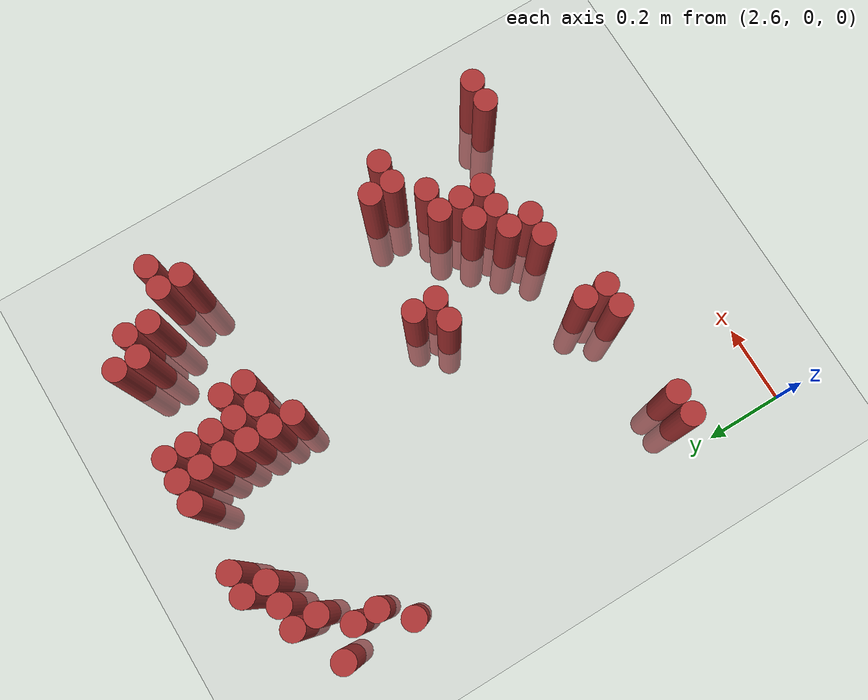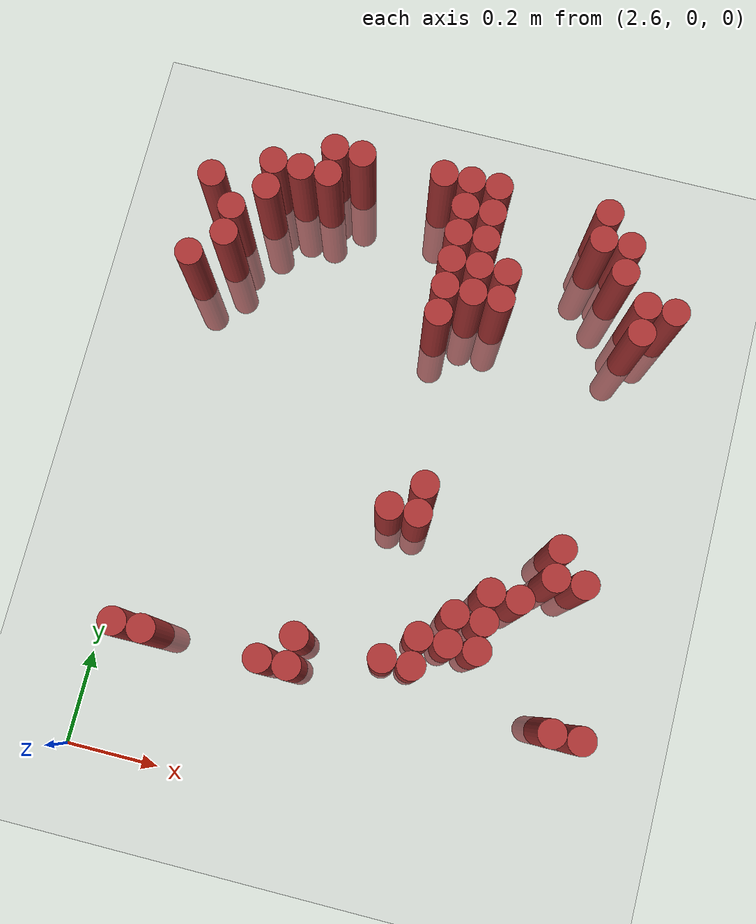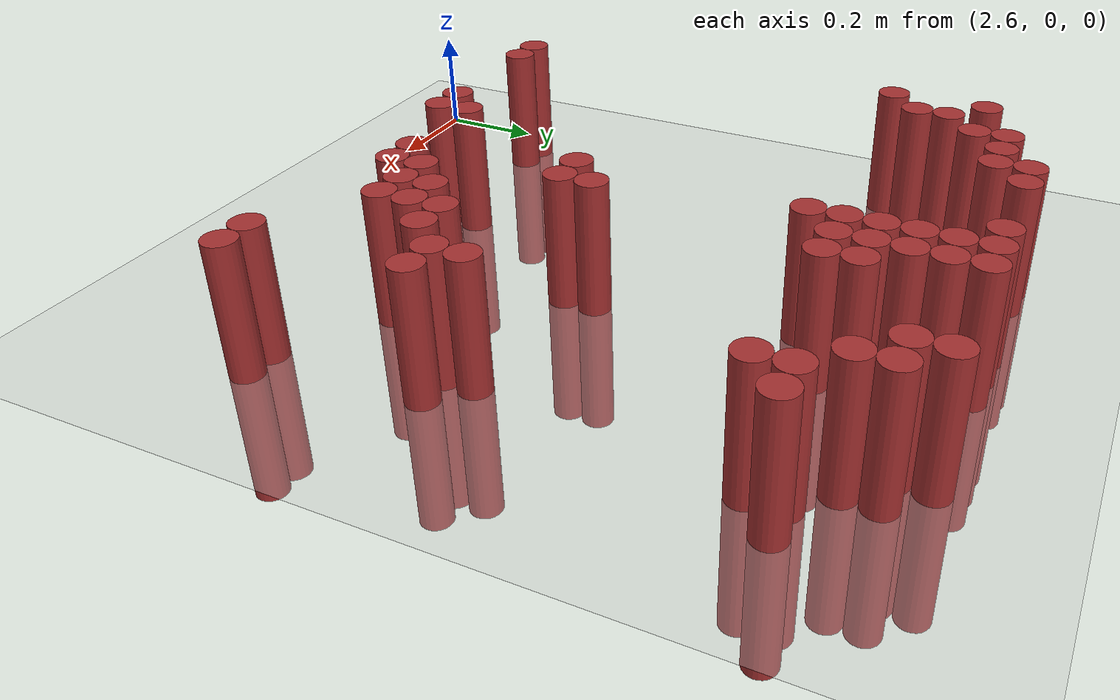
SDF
<sdf version="1.6">
 <world name="default">
  <model name="ground_plane">
   <static>1</static>
   <link name="link">
    <collision name="collision">
     <geometry><plane><normal>0 0 1</normal><size>100 100</size></plane></geometry>
     <surface><friction><ode><mu>100</mu><mu2>50</mu2></ode></friction></surface>
    </collision>
    <visual name="visual">
     <cast_shadows>0</cast_shadows>
     <geometry><plane><normal>0 0 1</normal><size>100 100</size></plane></geometry>
     <material>
      <script><uri>file://media/materials/scripts/gazebo.material</uri><name>Gazebo/Grey</name></script>
     </material>
    </visual>
   </link>
  </model>
  <model name="unit_cylinder_171">
   <static>1</static>
   <pose>2.850000 1.350000 0.000000 0.000000 0.000000 0.000000</pose>
   <link name="link">
    <inertial>
     <mass>1</mass>
     <inertia><ixx>0.145833</ixx><ixy>0</ixy><ixz>0</ixz><iyy>0.145833</iyy><iyz>0</iyz><izz>0.125</izz></inertia>
    </inertial>
    <collision name="collision">
     <geometry><cylinder><radius>0.030000</radius><length>0.5</length></cylinder></geometry>
    </collision>
    <visual name="visual">
     <geometry><cylinder><radius>0.030000</radius><length>0.5</length></cylinder></geometry>
     <material>
      <ambient>0.648000 0.192000 0.192000 1</ambient>
      <diffuse>0.648000 0.192000 0.192000 1</diffuse>
     </material>
     <material>
      <script><name>Gazebo/Grey</name><uri>file://media/materials/scripts/gazebo.material</uri></script>
     </material>
    </visual>
   </link>
  </model>
  <model name="unit_cylinder_172">
   <static>1</static>
   <pose>2.910000 1.350000 0.000000 0.000000 0.000000 0.000000</pose>
   <link name="link">
    <inertial>
     <mass>1</mass>
     <inertia><ixx>0.145833</ixx><ixy>0</ixy><ixz>0</ixz><iyy>0.145833</iyy><iyz>0</iyz><izz>0.125</izz></inertia>
    </inertial>
    <collision name="collision">
     <geometry><cylinder><radius>0.030000</radius><length>0.5</length></cylinder></geometry>
    </collision>
    <visual name="visual">
     <geometry><cylinder><radius>0.030000</radius><length>0.5</length></cylinder></geometry>
     <material>
      <ambient>0.648000 0.192000 0.192000 1</ambient>
      <diffuse>0.648000 0.192000 0.192000 1</diffuse>
     </material>
     <material>
      <script><name>Gazebo/Grey</name><uri>file://media/materials/scripts/gazebo.material</uri></script>
     </material>
    </visual>
   </link>
  </model>
  <model name="unit_cylinder_173">
   <static>1</static>
   <pose>3.090000 1.350000 0.000000 0.000000 0.000000 0.000000</pose>
   <link name="link">
    <inertial>
     <mass>1</mass>
     <inertia><ixx>0.145833</ixx><ixy>0</ixy><ixz>0</ixz><iyy>0.145833</iyy><iyz>0</iyz><izz>0.125</izz></inertia>
    </inertial>
    <collision name="collision">
     <geometry><cylinder><radius>0.030000</radius><length>0.5</length></cylinder></geometry>
    </collision>
    <visual name="visual">
     <geometry><cylinder><radius>0.030000</radius><length>0.5</length></cylinder></geometry>
     <material>
      <ambient>0.648000 0.192000 0.192000 1</ambient>
      <diffuse>0.648000 0.192000 0.192000 1</diffuse>
     </material>
     <material>
      <script><name>Gazebo/Grey</name><uri>file://media/materials/scripts/gazebo.material</uri></script>
     </material>
    </visual>
   </link>
  </model>
  <model name="unit_cylinder_174">
   <static>1</static>
   <pose>3.150000 1.350000 0.000000 0.000000 0.000000 0.000000</pose>
   <link name="link">
    <inertial>
     <mass>1</mass>
     <inertia><ixx>0.145833</ixx><ixy>0</ixy><ixz>0</ixz><iyy>0.145833</iyy><iyz>0</iyz><izz>0.125</izz></inertia>
    </inertial>
    <collision name="collision">
     <geometry><cylinder><radius>0.030000</radius><length>0.5</length></cylinder></geometry>
    </collision>
    <visual name="visual">
     <geometry><cylinder><radius>0.030000</radius><length>0.5</length></cylinder></geometry>
     <material>
      <ambient>0.648000 0.192000 0.192000 1</ambient>
      <diffuse>0.648000 0.192000 0.192000 1</diffuse>
     </material>
     <material>
      <script><name>Gazebo/Grey</name><uri>file://media/materials/scripts/gazebo.material</uri></script>
     </material>
    </visual>
   </link>
  </model>
  <model name="unit_cylinder_175">
   <static>1</static>
   <pose>3.210000 1.350000 0.000000 0.000000 0.000000 0.000000</pose>
   <link name="link">
    <inertial>
     <mass>1</mass>
     <inertia><ixx>0.145833</ixx><ixy>0</ixy><ixz>0</ixz><iyy>0.145833</iyy><iyz>0</iyz><izz>0.125</izz></inertia>
    </inertial>
    <collision name="collision">
     <geometry><cylinder><radius>0.030000</radius><length>0.5</length></cylinder></geometry>
    </collision>
    <visual name="visual">
     <geometry><cylinder><radius>0.030000</radius><length>0.5</length></cylinder></geometry>
     <material>
      <ambient>0.648000 0.192000 0.192000 1</ambient>
      <diffuse>0.648000 0.192000 0.192000 1</diffuse>
     </material>
     <material>
      <script><name>Gazebo/Grey</name><uri>file://media/materials/scripts/gazebo.material</uri></script>
     </material>
    </visual>
   </link>
  </model>
  <model name="unit_cylinder_176">
   <static>1</static>
   <pose>3.450000 1.350000 0.000000 0.000000 0.000000 0.000000</pose>
   <link name="link">
    <inertial>
     <mass>1</mass>
     <inertia><ixx>0.145833</ixx><ixy>0</ixy><ixz>0</ixz><iyy>0.145833</iyy><iyz>0</iyz><izz>0.125</izz></inertia>
    </inertial>
    <collision name="collision">
     <geometry><cylinder><radius>0.030000</radius><length>0.5</length></cylinder></geometry>
    </collision>
    <visual name="visual">
     <geometry><cylinder><radius>0.030000</radius><length>0.5</length></cylinder></geometry>
     <material>
      <ambient>0.648000 0.192000 0.192000 1</ambient>
      <diffuse>0.648000 0.192000 0.192000 1</diffuse>
     </material>
     <material>
      <script><name>Gazebo/Grey</name><uri>file://media/materials/scripts/gazebo.material</uri></script>
     </material>
    </visual>
   </link>
  </model>
  <model name="unit_cylinder_182">
   <static>1</static>
   <pose>2.730000 1.290000 0.000000 0.000000 0.000000 0.000000</pose>
   <link name="link">
    <inertial>
     <mass>1</mass>
     <inertia><ixx>0.145833</ixx><ixy>0</ixy><ixz>0</ixz><iyy>0.145833</iyy><iyz>0</iyz><izz>0.125</izz></inertia>
    </inertial>
    <collision name="collision">
     <geometry><cylinder><radius>0.030000</radius><length>0.5</length></cylinder></geometry>
    </collision>
    <visual name="visual">
     <geometry><cylinder><radius>0.030000</radius><length>0.5</length></cylinder></geometry>
     <material>
      <ambient>0.648000 0.192000 0.192000 1</ambient>
      <diffuse>0.648000 0.192000 0.192000 1</diffuse>
     </material>
     <material>
      <script><name>Gazebo/Grey</name><uri>file://media/materials/scripts/gazebo.material</uri></script>
     </material>
    </visual>
   </link>
  </model>
  <model name="unit_cylinder_183">
   <static>1</static>
   <pose>2.790000 1.290000 0.000000 0.000000 0.000000 0.000000</pose>
   <link name="link">
    <inertial>
     <mass>1</mass>
     <inertia><ixx>0.145833</ixx><ixy>0</ixy><ixz>0</ixz><iyy>0.145833</iyy><iyz>0</iyz><izz>0.125</izz></inertia>
    </inertial>
    <collision name="collision">
     <geometry><cylinder><radius>0.030000</radius><length>0.5</length></cylinder></geometry>
    </collision>
    <visual name="visual">
     <geometry><cylinder><radius>0.030000</radius><length>0.5</length></cylinder></geometry>
     <material>
      <ambient>0.648000 0.192000 0.192000 1</ambient>
      <diffuse>0.648000 0.192000 0.192000 1</diffuse>
     </material>
     <material>
      <script><name>Gazebo/Grey</name><uri>file://media/materials/scripts/gazebo.material</uri></script>
     </material>
    </visual>
   </link>
  </model>
  <model name="unit_cylinder_184">
   <static>1</static>
   <pose>2.850000 1.290000 0.000000 0.000000 0.000000 0.000000</pose>
   <link name="link">
    <inertial>
     <mass>1</mass>
     <inertia><ixx>0.145833</ixx><ixy>0</ixy><ixz>0</ixz><iyy>0.145833</iyy><iyz>0</iyz><izz>0.125</izz></inertia>
    </inertial>
    <collision name="collision">
     <geometry><cylinder><radius>0.030000</radius><length>0.5</length></cylinder></geometry>
    </collision>
    <visual name="visual">
     <geometry><cylinder><radius>0.030000</radius><length>0.5</length></cylinder></geometry>
     <material>
      <ambient>0.648000 0.192000 0.192000 1</ambient>
      <diffuse>0.648000 0.192000 0.192000 1</diffuse>
     </material>
     <material>
      <script><name>Gazebo/Grey</name><uri>file://media/materials/scripts/gazebo.material</uri></script>
     </material>
    </visual>
   </link>
  </model>
  <model name="unit_cylinder_185">
   <static>1</static>
   <pose>3.150000 1.290000 0.000000 0.000000 0.000000 0.000000</pose>
   <link name="link">
    <inertial>
     <mass>1</mass>
     <inertia><ixx>0.145833</ixx><ixy>0</ixy><ixz>0</ixz><iyy>0.145833</iyy><iyz>0</iyz><izz>0.125</izz></inertia>
    </inertial>
    <collision name="collision">
     <geometry><cylinder><radius>0.030000</radius><length>0.5</length></cylinder></geometry>
    </collision>
    <visual name="visual">
     <geometry><cylinder><radius>0.030000</radius><length>0.5</length></cylinder></geometry>
     <material>
      <ambient>0.648000 0.192000 0.192000 1</ambient>
      <diffuse>0.648000 0.192000 0.192000 1</diffuse>
     </material>
     <material>
      <script><name>Gazebo/Grey</name><uri>file://media/materials/scripts/gazebo.material</uri></script>
     </material>
    </visual>
   </link>
  </model>
  <model name="unit_cylinder_186">
   <static>1</static>
   <pose>3.210000 1.290000 0.000000 0.000000 0.000000 0.000000</pose>
   <link name="link">
    <inertial>
     <mass>1</mass>
     <inertia><ixx>0.145833</ixx><ixy>0</ixy><ixz>0</ixz><iyy>0.145833</iyy><iyz>0</iyz><izz>0.125</izz></inertia>
    </inertial>
    <collision name="collision">
     <geometry><cylinder><radius>0.030000</radius><length>0.5</length></cylinder></geometry>
    </collision>
    <visual name="visual">
     <geometry><cylinder><radius>0.030000</radius><length>0.5</length></cylinder></geometry>
     <material>
      <ambient>0.648000 0.192000 0.192000 1</ambient>
      <diffuse>0.648000 0.192000 0.192000 1</diffuse>
     </material>
     <material>
      <script><name>Gazebo/Grey</name><uri>file://media/materials/scripts/gazebo.material</uri></script>
     </material>
    </visual>
   </link>
  </model>
  <model name="unit_cylinder_187">
   <static>1</static>
   <pose>3.450000 1.290000 0.000000 0.000000 0.000000 0.000000</pose>
   <link name="link">
    <inertial>
     <mass>1</mass>
     <inertia><ixx>0.145833</ixx><ixy>0</ixy><ixz>0</ixz><iyy>0.145833</iyy><iyz>0</iyz><izz>0.125</izz></inertia>
    </inertial>
    <collision name="collision">
     <geometry><cylinder><radius>0.030000</radius><length>0.5</length></cylinder></geometry>
    </collision>
    <visual name="visual">
     <geometry><cylinder><radius>0.030000</radius><length>0.5</length></cylinder></geometry>
     <material>
      <ambient>0.648000 0.192000 0.192000 1</ambient>
      <diffuse>0.648000 0.192000 0.192000 1</diffuse>
     </material>
     <material>
      <script><name>Gazebo/Grey</name><uri>file://media/materials/scripts/gazebo.material</uri></script>
     </material>
    </visual>
   </link>
  </model>
  <model name="unit_cylinder_188">
   <static>1</static>
   <pose>3.510000 1.290000 0.000000 0.000000 0.000000 0.000000</pose>
   <link name="link">
    <inertial>
     <mass>1</mass>
     <inertia><ixx>0.145833</ixx><ixy>0</ixy><ixz>0</ixz><iyy>0.145833</iyy><iyz>0</iyz><izz>0.125</izz></inertia>
    </inertial>
    <collision name="collision">
     <geometry><cylinder><radius>0.030000</radius><length>0.5</length></cylinder></geometry>
    </collision>
    <visual name="visual">
     <geometry><cylinder><radius>0.030000</radius><length>0.5</length></cylinder></geometry>
     <material>
      <ambient>0.648000 0.192000 0.192000 1</ambient>
      <diffuse>0.648000 0.192000 0.192000 1</diffuse>
     </material>
     <material>
      <script><name>Gazebo/Grey</name><uri>file://media/materials/scripts/gazebo.material</uri></script>
     </material>
    </visual>
   </link>
  </model>
  <model name="unit_cylinder_193">
   <static>1</static>
   <pose>2.610000 1.230000 0.000000 0.000000 0.000000 0.000000</pose>
   <link name="link">
    <inertial>
     <mass>1</mass>
     <inertia><ixx>0.145833</ixx><ixy>0</ixy><ixz>0</ixz><iyy>0.145833</iyy><iyz>0</iyz><izz>0.125</izz></inertia>
    </inertial>
    <collision name="collision">
     <geometry><cylinder><radius>0.030000</radius><length>0.5</length></cylinder></geometry>
    </collision>
    <visual name="visual">
     <geometry><cylinder><radius>0.030000</radius><length>0.5</length></cylinder></geometry>
     <material>
      <ambient>0.648000 0.192000 0.192000 1</ambient>
      <diffuse>0.648000 0.192000 0.192000 1</diffuse>
     </material>
     <material>
      <script><name>Gazebo/Grey</name><uri>file://media/materials/scripts/gazebo.material</uri></script>
     </material>
    </visual>
   </link>
  </model>
  <model name="unit_cylinder_194">
   <static>1</static>
   <pose>2.730000 1.230000 0.000000 0.000000 0.000000 0.000000</pose>
   <link name="link">
    <inertial>
     <mass>1</mass>
     <inertia><ixx>0.145833</ixx><ixy>0</ixy><ixz>0</ixz><iyy>0.145833</iyy><iyz>0</iyz><izz>0.125</izz></inertia>
    </inertial>
    <collision name="collision">
     <geometry><cylinder><radius>0.030000</radius><length>0.5</length></cylinder></geometry>
    </collision>
    <visual name="visual">
     <geometry><cylinder><radius>0.030000</radius><length>0.5</length></cylinder></geometry>
     <material>
      <ambient>0.648000 0.192000 0.192000 1</ambient>
      <diffuse>0.648000 0.192000 0.192000 1</diffuse>
     </material>
     <material>
      <script><name>Gazebo/Grey</name><uri>file://media/materials/scripts/gazebo.material</uri></script>
     </material>
    </visual>
   </link>
  </model>
  <model name="unit_cylinder_195">
   <static>1</static>
   <pose>3.150000 1.230000 0.000000 0.000000 0.000000 0.000000</pose>
   <link name="link">
    <inertial>
     <mass>1</mass>
     <inertia><ixx>0.145833</ixx><ixy>0</ixy><ixz>0</ixz><iyy>0.145833</iyy><iyz>0</iyz><izz>0.125</izz></inertia>
    </inertial>
    <collision name="collision">
     <geometry><cylinder><radius>0.030000</radius><length>0.5</length></cylinder></geometry>
    </collision>
    <visual name="visual">
     <geometry><cylinder><radius>0.030000</radius><length>0.5</length></cylinder></geometry>
     <material>
      <ambient>0.648000 0.192000 0.192000 1</ambient>
      <diffuse>0.648000 0.192000 0.192000 1</diffuse>
     </material>
     <material>
      <script><name>Gazebo/Grey</name><uri>file://media/materials/scripts/gazebo.material</uri></script>
     </material>
    </visual>
   </link>
  </model>
  <model name="unit_cylinder_196">
   <static>1</static>
   <pose>3.210000 1.230000 0.000000 0.000000 0.000000 0.000000</pose>
   <link name="link">
    <inertial>
     <mass>1</mass>
     <inertia><ixx>0.145833</ixx><ixy>0</ixy><ixz>0</ixz><iyy>0.145833</iyy><iyz>0</iyz><izz>0.125</izz></inertia>
    </inertial>
    <collision name="collision">
     <geometry><cylinder><radius>0.030000</radius><length>0.5</length></cylinder></geometry>
    </collision>
    <visual name="visual">
     <geometry><cylinder><radius>0.030000</radius><length>0.5</length></cylinder></geometry>
     <material>
      <ambient>0.648000 0.192000 0.192000 1</ambient>
      <diffuse>0.648000 0.192000 0.192000 1</diffuse>
     </material>
     <material>
      <script><name>Gazebo/Grey</name><uri>file://media/materials/scripts/gazebo.material</uri></script>
     </material>
    </visual>
   </link>
  </model>
  <model name="unit_cylinder_197">
   <static>1</static>
   <pose>3.510000 1.230000 0.000000 0.000000 0.000000 0.000000</pose>
   <link name="link">
    <inertial>
     <mass>1</mass>
     <inertia><ixx>0.145833</ixx><ixy>0</ixy><ixz>0</ixz><iyy>0.145833</iyy><iyz>0</iyz><izz>0.125</izz></inertia>
    </inertial>
    <collision name="collision">
     <geometry><cylinder><radius>0.030000</radius><length>0.5</length></cylinder></geometry>
    </collision>
    <visual name="visual">
     <geometry><cylinder><radius>0.030000</radius><length>0.5</length></cylinder></geometry>
     <material>
      <ambient>0.648000 0.192000 0.192000 1</ambient>
      <diffuse>0.648000 0.192000 0.192000 1</diffuse>
     </material>
     <material>
      <script><name>Gazebo/Grey</name><uri>file://media/materials/scripts/gazebo.material</uri></script>
     </material>
    </visual>
   </link>
  </model>
  <model name="unit_cylinder_200">
   <static>1</static>
   <pose>2.670000 1.170000 0.000000 0.000000 0.000000 0.000000</pose>
   <link name="link">
    <inertial>
     <mass>1</mass>
     <inertia><ixx>0.145833</ixx><ixy>0</ixy><ixz>0</ixz><iyy>0.145833</iyy><iyz>0</iyz><izz>0.125</izz></inertia>
    </inertial>
    <collision name="collision">
     <geometry><cylinder><radius>0.030000</radius><length>0.5</length></cylinder></geometry>
    </collision>
    <visual name="visual">
     <geometry><cylinder><radius>0.030000</radius><length>0.5</length></cylinder></geometry>
     <material>
      <ambient>0.648000 0.192000 0.192000 1</ambient>
      <diffuse>0.648000 0.192000 0.192000 1</diffuse>
     </material>
     <material>
      <script><name>Gazebo/Grey</name><uri>file://media/materials/scripts/gazebo.material</uri></script>
     </material>
    </visual>
   </link>
  </model>
  <model name="unit_cylinder_201">
   <static>1</static>
   <pose>3.150000 1.170000 0.000000 0.000000 0.000000 0.000000</pose>
   <link name="link">
    <inertial>
     <mass>1</mass>
     <inertia><ixx>0.145833</ixx><ixy>0</ixy><ixz>0</ixz><iyy>0.145833</iyy><iyz>0</iyz><izz>0.125</izz></inertia>
    </inertial>
    <collision name="collision">
     <geometry><cylinder><radius>0.030000</radius><length>0.5</length></cylinder></geometry>
    </collision>
    <visual name="visual">
     <geometry><cylinder><radius>0.030000</radius><length>0.5</length></cylinder></geometry>
     <material>
      <ambient>0.648000 0.192000 0.192000 1</ambient>
      <diffuse>0.648000 0.192000 0.192000 1</diffuse>
     </material>
     <material>
      <script><name>Gazebo/Grey</name><uri>file://media/materials/scripts/gazebo.material</uri></script>
     </material>
    </visual>
   </link>
  </model>
  <model name="unit_cylinder_202">
   <static>1</static>
   <pose>3.210000 1.170000 0.000000 0.000000 0.000000 0.000000</pose>
   <link name="link">
    <inertial>
     <mass>1</mass>
     <inertia><ixx>0.145833</ixx><ixy>0</ixy><ixz>0</ixz><iyy>0.145833</iyy><iyz>0</iyz><izz>0.125</izz></inertia>
    </inertial>
    <collision name="collision">
     <geometry><cylinder><radius>0.030000</radius><length>0.5</length></cylinder></geometry>
    </collision>
    <visual name="visual">
     <geometry><cylinder><radius>0.030000</radius><length>0.5</length></cylinder></geometry>
     <material>
      <ambient>0.648000 0.192000 0.192000 1</ambient>
      <diffuse>0.648000 0.192000 0.192000 1</diffuse>
     </material>
     <material>
      <script><name>Gazebo/Grey</name><uri>file://media/materials/scripts/gazebo.material</uri></script>
     </material>
    </visual>
   </link>
  </model>
  <model name="unit_cylinder_203">
   <static>1</static>
   <pose>3.270000 1.170000 0.000000 0.000000 0.000000 0.000000</pose>
   <link name="link">
    <inertial>
     <mass>1</mass>
     <inertia><ixx>0.145833</ixx><ixy>0</ixy><ixz>0</ixz><iyy>0.145833</iyy><iyz>0</iyz><izz>0.125</izz></inertia>
    </inertial>
    <collision name="collision">
     <geometry><cylinder><radius>0.030000</radius><length>0.5</length></cylinder></geometry>
    </collision>
    <visual name="visual">
     <geometry><cylinder><radius>0.030000</radius><length>0.5</length></cylinder></geometry>
     <material>
      <ambient>0.648000 0.192000 0.192000 1</ambient>
      <diffuse>0.648000 0.192000 0.192000 1</diffuse>
     </material>
     <material>
      <script><name>Gazebo/Grey</name><uri>file://media/materials/scripts/gazebo.material</uri></script>
     </material>
    </visual>
   </link>
  </model>
  <model name="unit_cylinder_204">
   <static>1</static>
   <pose>3.570000 1.170000 0.000000 0.000000 0.000000 0.000000</pose>
   <link name="link">
    <inertial>
     <mass>1</mass>
     <inertia><ixx>0.145833</ixx><ixy>0</ixy><ixz>0</ixz><iyy>0.145833</iyy><iyz>0</iyz><izz>0.125</izz></inertia>
    </inertial>
    <collision name="collision">
     <geometry><cylinder><radius>0.030000</radius><length>0.5</length></cylinder></geometry>
    </collision>
    <visual name="visual">
     <geometry><cylinder><radius>0.030000</radius><length>0.5</length></cylinder></geometry>
     <material>
      <ambient>0.648000 0.192000 0.192000 1</ambient>
      <diffuse>0.648000 0.192000 0.192000 1</diffuse>
     </material>
     <material>
      <script><name>Gazebo/Grey</name><uri>file://media/materials/scripts/gazebo.material</uri></script>
     </material>
    </visual>
   </link>
  </model>
  <model name="unit_cylinder_205">
   <static>1</static>
   <pose>3.630000 1.170000 0.000000 0.000000 0.000000 0.000000</pose>
   <link name="link">
    <inertial>
     <mass>1</mass>
     <inertia><ixx>0.145833</ixx><ixy>0</ixy><ixz>0</ixz><iyy>0.145833</iyy><iyz>0</iyz><izz>0.125</izz></inertia>
    </inertial>
    <collision name="collision">
     <geometry><cylinder><radius>0.030000</radius><length>0.5</length></cylinder></geometry>
    </collision>
    <visual name="visual">
     <geometry><cylinder><radius>0.030000</radius><length>0.5</length></cylinder></geometry>
     <material>
      <ambient>0.648000 0.192000 0.192000 1</ambient>
      <diffuse>0.648000 0.192000 0.192000 1</diffuse>
     </material>
     <material>
      <script><name>Gazebo/Grey</name><uri>file://media/materials/scripts/gazebo.material</uri></script>
     </material>
    </visual>
   </link>
  </model>
  <model name="unit_cylinder_211">
   <static>1</static>
   <pose>2.670000 1.110000 0.000000 0.000000 0.000000 0.000000</pose>
   <link name="link">
    <inertial>
     <mass>1</mass>
     <inertia><ixx>0.145833</ixx><ixy>0</ixy><ixz>0</ixz><iyy>0.145833</iyy><iyz>0</iyz><izz>0.125</izz></inertia>
    </inertial>
    <collision name="collision">
     <geometry><cylinder><radius>0.030000</radius><length>0.5</length></cylinder></geometry>
    </collision>
    <visual name="visual">
     <geometry><cylinder><radius>0.030000</radius><length>0.5</length></cylinder></geometry>
     <material>
      <ambient>0.648000 0.192000 0.192000 1</ambient>
      <diffuse>0.648000 0.192000 0.192000 1</diffuse>
     </material>
     <material>
      <script><name>Gazebo/Grey</name><uri>file://media/materials/scripts/gazebo.material</uri></script>
     </material>
    </visual>
   </link>
  </model>
  <model name="unit_cylinder_212">
   <static>1</static>
   <pose>3.150000 1.110000 0.000000 0.000000 0.000000 0.000000</pose>
   <link name="link">
    <inertial>
     <mass>1</mass>
     <inertia><ixx>0.145833</ixx><ixy>0</ixy><ixz>0</ixz><iyy>0.145833</iyy><iyz>0</iyz><izz>0.125</izz></inertia>
    </inertial>
    <collision name="collision">
     <geometry><cylinder><radius>0.030000</radius><length>0.5</length></cylinder></geometry>
    </collision>
    <visual name="visual">
     <geometry><cylinder><radius>0.030000</radius><length>0.5</length></cylinder></geometry>
     <material>
      <ambient>0.648000 0.192000 0.192000 1</ambient>
      <diffuse>0.648000 0.192000 0.192000 1</diffuse>
     </material>
     <material>
      <script><name>Gazebo/Grey</name><uri>file://media/materials/scripts/gazebo.material</uri></script>
     </material>
    </visual>
   </link>
  </model>
  <model name="unit_cylinder_213">
   <static>1</static>
   <pose>3.210000 1.110000 0.000000 0.000000 0.000000 0.000000</pose>
   <link name="link">
    <inertial>
     <mass>1</mass>
     <inertia><ixx>0.145833</ixx><ixy>0</ixy><ixz>0</ixz><iyy>0.145833</iyy><iyz>0</iyz><izz>0.125</izz></inertia>
    </inertial>
    <collision name="collision">
     <geometry><cylinder><radius>0.030000</radius><length>0.5</length></cylinder></geometry>
    </collision>
    <visual name="visual">
     <geometry><cylinder><radius>0.030000</radius><length>0.5</length></cylinder></geometry>
     <material>
      <ambient>0.648000 0.192000 0.192000 1</ambient>
      <diffuse>0.648000 0.192000 0.192000 1</diffuse>
     </material>
     <material>
      <script><name>Gazebo/Grey</name><uri>file://media/materials/scripts/gazebo.material</uri></script>
     </material>
    </visual>
   </link>
  </model>
  <model name="unit_cylinder_214">
   <static>1</static>
   <pose>3.270000 1.110000 0.000000 0.000000 0.000000 0.000000</pose>
   <link name="link">
    <inertial>
     <mass>1</mass>
     <inertia><ixx>0.145833</ixx><ixy>0</ixy><ixz>0</ixz><iyy>0.145833</iyy><iyz>0</iyz><izz>0.125</izz></inertia>
    </inertial>
    <collision name="collision">
     <geometry><cylinder><radius>0.030000</radius><length>0.5</length></cylinder></geometry>
    </collision>
    <visual name="visual">
     <geometry><cylinder><radius>0.030000</radius><length>0.5</length></cylinder></geometry>
     <material>
      <ambient>0.648000 0.192000 0.192000 1</ambient>
      <diffuse>0.648000 0.192000 0.192000 1</diffuse>
     </material>
     <material>
      <script><name>Gazebo/Grey</name><uri>file://media/materials/scripts/gazebo.material</uri></script>
     </material>
    </visual>
   </link>
  </model>
  <model name="unit_cylinder_215">
   <static>1</static>
   <pose>3.570000 1.110000 0.000000 0.000000 0.000000 0.000000</pose>
   <link name="link">
    <inertial>
     <mass>1</mass>
     <inertia><ixx>0.145833</ixx><ixy>0</ixy><ixz>0</ixz><iyy>0.145833</iyy><iyz>0</iyz><izz>0.125</izz></inertia>
    </inertial>
    <collision name="collision">
     <geometry><cylinder><radius>0.030000</radius><length>0.5</length></cylinder></geometry>
    </collision>
    <visual name="visual">
     <geometry><cylinder><radius>0.030000</radius><length>0.5</length></cylinder></geometry>
     <material>
      <ambient>0.648000 0.192000 0.192000 1</ambient>
      <diffuse>0.648000 0.192000 0.192000 1</diffuse>
     </material>
     <material>
      <script><name>Gazebo/Grey</name><uri>file://media/materials/scripts/gazebo.material</uri></script>
     </material>
    </visual>
   </link>
  </model>
  <model name="unit_cylinder_224">
   <static>1</static>
   <pose>2.610000 1.050000 0.000000 0.000000 0.000000 0.000000</pose>
   <link name="link">
    <inertial>
     <mass>1</mass>
     <inertia><ixx>0.145833</ixx><ixy>0</ixy><ixz>0</ixz><iyy>0.145833</iyy><iyz>0</iyz><izz>0.125</izz></inertia>
    </inertial>
    <collision name="collision">
     <geometry><cylinder><radius>0.030000</radius><length>0.5</length></cylinder></geometry>
    </collision>
    <visual name="visual">
     <geometry><cylinder><radius>0.030000</radius><length>0.5</length></cylinder></geometry>
     <material>
      <ambient>0.648000 0.192000 0.192000 1</ambient>
      <diffuse>0.648000 0.192000 0.192000 1</diffuse>
     </material>
     <material>
      <script><name>Gazebo/Grey</name><uri>file://media/materials/scripts/gazebo.material</uri></script>
     </material>
    </visual>
   </link>
  </model>
  <model name="unit_cylinder_225">
   <static>1</static>
   <pose>3.150000 1.050000 0.000000 0.000000 0.000000 0.000000</pose>
   <link name="link">
    <inertial>
     <mass>1</mass>
     <inertia><ixx>0.145833</ixx><ixy>0</ixy><ixz>0</ixz><iyy>0.145833</iyy><iyz>0</iyz><izz>0.125</izz></inertia>
    </inertial>
    <collision name="collision">
     <geometry><cylinder><radius>0.030000</radius><length>0.5</length></cylinder></geometry>
    </collision>
    <visual name="visual">
     <geometry><cylinder><radius>0.030000</radius><length>0.5</length></cylinder></geometry>
     <material>
      <ambient>0.648000 0.192000 0.192000 1</ambient>
      <diffuse>0.648000 0.192000 0.192000 1</diffuse>
     </material>
     <material>
      <script><name>Gazebo/Grey</name><uri>file://media/materials/scripts/gazebo.material</uri></script>
     </material>
    </visual>
   </link>
  </model>
  <model name="unit_cylinder_230">
   <static>1</static>
   <pose>3.210000 0.690000 0.000000 0.000000 0.000000 0.000000</pose>
   <link name="link">
    <inertial>
     <mass>1</mass>
     <inertia><ixx>0.145833</ixx><ixy>0</ixy><ixz>0</ixz><iyy>0.145833</iyy><iyz>0</iyz><izz>0.125</izz></inertia>
    </inertial>
    <collision name="collision">
     <geometry><cylinder><radius>0.030000</radius><length>0.5</length></cylinder></geometry>
    </collision>
    <visual name="visual">
     <geometry><cylinder><radius>0.030000</radius><length>0.5</length></cylinder></geometry>
     <material>
      <ambient>0.648000 0.192000 0.192000 1</ambient>
      <diffuse>0.648000 0.192000 0.192000 1</diffuse>
     </material>
     <material>
      <script><name>Gazebo/Grey</name><uri>file://media/materials/scripts/gazebo.material</uri></script>
     </material>
    </visual>
   </link>
  </model>
  <model name="unit_cylinder_231">
   <static>1</static>
   <pose>3.150000 0.630000 0.000000 0.000000 0.000000 0.000000</pose>
   <link name="link">
    <inertial>
     <mass>1</mass>
     <inertia><ixx>0.145833</ixx><ixy>0</ixy><ixz>0</ixz><iyy>0.145833</iyy><iyz>0</iyz><izz>0.125</izz></inertia>
    </inertial>
    <collision name="collision">
     <geometry><cylinder><radius>0.030000</radius><length>0.5</length></cylinder></geometry>
    </collision>
    <visual name="visual">
     <geometry><cylinder><radius>0.030000</radius><length>0.5</length></cylinder></geometry>
     <material>
      <ambient>0.648000 0.192000 0.192000 1</ambient>
      <diffuse>0.648000 0.192000 0.192000 1</diffuse>
     </material>
     <material>
      <script><name>Gazebo/Grey</name><uri>file://media/materials/scripts/gazebo.material</uri></script>
     </material>
    </visual>
   </link>
  </model>
  <model name="unit_cylinder_232">
   <static>1</static>
   <pose>3.210000 0.630000 0.000000 0.000000 0.000000 0.000000</pose>
   <link name="link">
    <inertial>
     <mass>1</mass>
     <inertia><ixx>0.145833</ixx><ixy>0</ixy><ixz>0</ixz><iyy>0.145833</iyy><iyz>0</iyz><izz>0.125</izz></inertia>
    </inertial>
    <collision name="collision">
     <geometry><cylinder><radius>0.030000</radius><length>0.5</length></cylinder></geometry>
    </collision>
    <visual name="visual">
     <geometry><cylinder><radius>0.030000</radius><length>0.5</length></cylinder></geometry>
     <material>
      <ambient>0.648000 0.192000 0.192000 1</ambient>
      <diffuse>0.648000 0.192000 0.192000 1</diffuse>
     </material>
     <material>
      <script><name>Gazebo/Grey</name><uri>file://media/materials/scripts/gazebo.material</uri></script>
     </material>
    </visual>
   </link>
  </model>
  <model name="unit_cylinder_233">
   <static>1</static>
   <pose>3.510000 0.630000 0.000000 0.000000 0.000000 0.000000</pose>
   <link name="link">
    <inertial>
     <mass>1</mass>
     <inertia><ixx>0.145833</ixx><ixy>0</ixy><ixz>0</ixz><iyy>0.145833</iyy><iyz>0</iyz><izz>0.125</izz></inertia>
    </inertial>
    <collision name="collision">
     <geometry><cylinder><radius>0.030000</radius><length>0.5</length></cylinder></geometry>
    </collision>
    <visual name="visual">
     <geometry><cylinder><radius>0.030000</radius><length>0.5</length></cylinder></geometry>
     <material>
      <ambient>0.648000 0.192000 0.192000 1</ambient>
      <diffuse>0.648000 0.192000 0.192000 1</diffuse>
     </material>
     <material>
      <script><name>Gazebo/Grey</name><uri>file://media/materials/scripts/gazebo.material</uri></script>
     </material>
    </visual>
   </link>
  </model>
  <model name="unit_cylinder_234">
   <static>1</static>
   <pose>3.510000 0.570000 0.000000 0.000000 0.000000 0.000000</pose>
   <link name="link">
    <inertial>
     <mass>1</mass>
     <inertia><ixx>0.145833</ixx><ixy>0</ixy><ixz>0</ixz><iyy>0.145833</iyy><iyz>0</iyz><izz>0.125</izz></inertia>
    </inertial>
    <collision name="collision">
     <geometry><cylinder><radius>0.030000</radius><length>0.5</length></cylinder></geometry>
    </collision>
    <visual name="visual">
     <geometry><cylinder><radius>0.030000</radius><length>0.5</length></cylinder></geometry>
     <material>
      <ambient>0.648000 0.192000 0.192000 1</ambient>
      <diffuse>0.648000 0.192000 0.192000 1</diffuse>
     </material>
     <material>
      <script><name>Gazebo/Grey</name><uri>file://media/materials/scripts/gazebo.material</uri></script>
     </material>
    </visual>
   </link>
  </model>
  <model name="unit_cylinder_235">
   <static>1</static>
   <pose>3.570000 0.570000 0.000000 0.000000 0.000000 0.000000</pose>
   <link name="link">
    <inertial>
     <mass>1</mass>
     <inertia><ixx>0.145833</ixx><ixy>0</ixy><ixz>0</ixz><iyy>0.145833</iyy><iyz>0</iyz><izz>0.125</izz></inertia>
    </inertial>
    <collision name="collision">
     <geometry><cylinder><radius>0.030000</radius><length>0.5</length></cylinder></geometry>
    </collision>
    <visual name="visual">
     <geometry><cylinder><radius>0.030000</radius><length>0.5</length></cylinder></geometry>
     <material>
      <ambient>0.648000 0.192000 0.192000 1</ambient>
      <diffuse>0.648000 0.192000 0.192000 1</diffuse>
     </material>
     <material>
      <script><name>Gazebo/Grey</name><uri>file://media/materials/scripts/gazebo.material</uri></script>
     </material>
    </visual>
   </link>
  </model>
  <model name="unit_cylinder_236">
   <static>1</static>
   <pose>3.390000 0.510000 0.000000 0.000000 0.000000 0.000000</pose>
   <link name="link">
    <inertial>
     <mass>1</mass>
     <inertia><ixx>0.145833</ixx><ixy>0</ixy><ixz>0</ixz><iyy>0.145833</iyy><iyz>0</iyz><izz>0.125</izz></inertia>
    </inertial>
    <collision name="collision">
     <geometry><cylinder><radius>0.030000</radius><length>0.5</length></cylinder></geometry>
    </collision>
    <visual name="visual">
     <geometry><cylinder><radius>0.030000</radius><length>0.5</length></cylinder></geometry>
     <material>
      <ambient>0.648000 0.192000 0.192000 1</ambient>
      <diffuse>0.648000 0.192000 0.192000 1</diffuse>
     </material>
     <material>
      <script><name>Gazebo/Grey</name><uri>file://media/materials/scripts/gazebo.material</uri></script>
     </material>
    </visual>
   </link>
  </model>
  <model name="unit_cylinder_237">
   <static>1</static>
   <pose>3.450000 0.510000 0.000000 0.000000 0.000000 0.000000</pose>
   <link name="link">
    <inertial>
     <mass>1</mass>
     <inertia><ixx>0.145833</ixx><ixy>0</ixy><ixz>0</ixz><iyy>0.145833</iyy><iyz>0</iyz><izz>0.125</izz></inertia>
    </inertial>
    <collision name="collision">
     <geometry><cylinder><radius>0.030000</radius><length>0.5</length></cylinder></geometry>
    </collision>
    <visual name="visual">
     <geometry><cylinder><radius>0.030000</radius><length>0.5</length></cylinder></geometry>
     <material>
      <ambient>0.648000 0.192000 0.192000 1</ambient>
      <diffuse>0.648000 0.192000 0.192000 1</diffuse>
     </material>
     <material>
      <script><name>Gazebo/Grey</name><uri>file://media/materials/scripts/gazebo.material</uri></script>
     </material>
    </visual>
   </link>
  </model>
  <model name="unit_cylinder_240">
   <static>1</static>
   <pose>3.330000 0.450000 0.000000 0.000000 0.000000 0.000000</pose>
   <link name="link">
    <inertial>
     <mass>1</mass>
     <inertia><ixx>0.145833</ixx><ixy>0</ixy><ixz>0</ixz><iyy>0.145833</iyy><iyz>0</iyz><izz>0.125</izz></inertia>
    </inertial>
    <collision name="collision">
     <geometry><cylinder><radius>0.030000</radius><length>0.5</length></cylinder></geometry>
    </collision>
    <visual name="visual">
     <geometry><cylinder><radius>0.030000</radius><length>0.5</length></cylinder></geometry>
     <material>
      <ambient>0.648000 0.192000 0.192000 1</ambient>
      <diffuse>0.648000 0.192000 0.192000 1</diffuse>
     </material>
     <material>
      <script><name>Gazebo/Grey</name><uri>file://media/materials/scripts/gazebo.material</uri></script>
     </material>
    </visual>
   </link>
  </model>
  <model name="unit_cylinder_241">
   <static>1</static>
   <pose>3.390000 0.450000 0.000000 0.000000 0.000000 0.000000</pose>
   <link name="link">
    <inertial>
     <mass>1</mass>
     <inertia><ixx>0.145833</ixx><ixy>0</ixy><ixz>0</ixz><iyy>0.145833</iyy><iyz>0</iyz><izz>0.125</izz></inertia>
    </inertial>
    <collision name="collision">
     <geometry><cylinder><radius>0.030000</radius><length>0.5</length></cylinder></geometry>
    </collision>
    <visual name="visual">
     <geometry><cylinder><radius>0.030000</radius><length>0.5</length></cylinder></geometry>
     <material>
      <ambient>0.648000 0.192000 0.192000 1</ambient>
      <diffuse>0.648000 0.192000 0.192000 1</diffuse>
     </material>
     <material>
      <script><name>Gazebo/Grey</name><uri>file://media/materials/scripts/gazebo.material</uri></script>
     </material>
    </visual>
   </link>
  </model>
  <model name="unit_cylinder_243">
   <static>1</static>
   <pose>3.270000 0.390000 0.000000 0.000000 0.000000 0.000000</pose>
   <link name="link">
    <inertial>
     <mass>1</mass>
     <inertia><ixx>0.145833</ixx><ixy>0</ixy><ixz>0</ixz><iyy>0.145833</iyy><iyz>0</iyz><izz>0.125</izz></inertia>
    </inertial>
    <collision name="collision">
     <geometry><cylinder><radius>0.030000</radius><length>0.5</length></cylinder></geometry>
    </collision>
    <visual name="visual">
     <geometry><cylinder><radius>0.030000</radius><length>0.5</length></cylinder></geometry>
     <material>
      <ambient>0.648000 0.192000 0.192000 1</ambient>
      <diffuse>0.648000 0.192000 0.192000 1</diffuse>
     </material>
     <material>
      <script><name>Gazebo/Grey</name><uri>file://media/materials/scripts/gazebo.material</uri></script>
     </material>
    </visual>
   </link>
  </model>
  <model name="unit_cylinder_244">
   <static>1</static>
   <pose>3.330000 0.390000 0.000000 0.000000 0.000000 0.000000</pose>
   <link name="link">
    <inertial>
     <mass>1</mass>
     <inertia><ixx>0.145833</ixx><ixy>0</ixy><ixz>0</ixz><iyy>0.145833</iyy><iyz>0</iyz><izz>0.125</izz></inertia>
    </inertial>
    <collision name="collision">
     <geometry><cylinder><radius>0.030000</radius><length>0.5</length></cylinder></geometry>
    </collision>
    <visual name="visual">
     <geometry><cylinder><radius>0.030000</radius><length>0.5</length></cylinder></geometry>
     <material>
      <ambient>0.648000 0.192000 0.192000 1</ambient>
      <diffuse>0.648000 0.192000 0.192000 1</diffuse>
     </material>
     <material>
      <script><name>Gazebo/Grey</name><uri>file://media/materials/scripts/gazebo.material</uri></script>
     </material>
    </visual>
   </link>
  </model>
  <model name="unit_cylinder_245">
   <static>1</static>
   <pose>3.390000 0.390000 0.000000 0.000000 0.000000 0.000000</pose>
   <link name="link">
    <inertial>
     <mass>1</mass>
     <inertia><ixx>0.145833</ixx><ixy>0</ixy><ixz>0</ixz><iyy>0.145833</iyy><iyz>0</iyz><izz>0.125</izz></inertia>
    </inertial>
    <collision name="collision">
     <geometry><cylinder><radius>0.030000</radius><length>0.5</length></cylinder></geometry>
    </collision>
    <visual name="visual">
     <geometry><cylinder><radius>0.030000</radius><length>0.5</length></cylinder></geometry>
     <material>
      <ambient>0.648000 0.192000 0.192000 1</ambient>
      <diffuse>0.648000 0.192000 0.192000 1</diffuse>
     </material>
     <material>
      <script><name>Gazebo/Grey</name><uri>file://media/materials/scripts/gazebo.material</uri></script>
     </material>
    </visual>
   </link>
  </model>
  <model name="unit_cylinder_246">
   <static>1</static>
   <pose>3.030000 0.330000 0.000000 0.000000 0.000000 0.000000</pose>
   <link name="link">
    <inertial>
     <mass>1</mass>
     <inertia><ixx>0.145833</ixx><ixy>0</ixy><ixz>0</ixz><iyy>0.145833</iyy><iyz>0</iyz><izz>0.125</izz></inertia>
    </inertial>
    <collision name="collision">
     <geometry><cylinder><radius>0.030000</radius><length>0.5</length></cylinder></geometry>
    </collision>
    <visual name="visual">
     <geometry><cylinder><radius>0.030000</radius><length>0.5</length></cylinder></geometry>
     <material>
      <ambient>0.648000 0.192000 0.192000 1</ambient>
      <diffuse>0.648000 0.192000 0.192000 1</diffuse>
     </material>
     <material>
      <script><name>Gazebo/Grey</name><uri>file://media/materials/scripts/gazebo.material</uri></script>
     </material>
    </visual>
   </link>
  </model>
  <model name="unit_cylinder_247">
   <static>1</static>
   <pose>3.210000 0.330000 0.000000 0.000000 0.000000 0.000000</pose>
   <link name="link">
    <inertial>
     <mass>1</mass>
     <inertia><ixx>0.145833</ixx><ixy>0</ixy><ixz>0</ixz><iyy>0.145833</iyy><iyz>0</iyz><izz>0.125</izz></inertia>
    </inertial>
    <collision name="collision">
     <geometry><cylinder><radius>0.030000</radius><length>0.5</length></cylinder></geometry>
    </collision>
    <visual name="visual">
     <geometry><cylinder><radius>0.030000</radius><length>0.5</length></cylinder></geometry>
     <material>
      <ambient>0.648000 0.192000 0.192000 1</ambient>
      <diffuse>0.648000 0.192000 0.192000 1</diffuse>
     </material>
     <material>
      <script><name>Gazebo/Grey</name><uri>file://media/materials/scripts/gazebo.material</uri></script>
     </material>
    </visual>
   </link>
  </model>
  <model name="unit_cylinder_248">
   <static>1</static>
   <pose>3.270000 0.330000 0.000000 0.000000 0.000000 0.000000</pose>
   <link name="link">
    <inertial>
     <mass>1</mass>
     <inertia><ixx>0.145833</ixx><ixy>0</ixy><ixz>0</ixz><iyy>0.145833</iyy><iyz>0</iyz><izz>0.125</izz></inertia>
    </inertial>
    <collision name="collision">
     <geometry><cylinder><radius>0.030000</radius><length>0.5</length></cylinder></geometry>
    </collision>
    <visual name="visual">
     <geometry><cylinder><radius>0.030000</radius><length>0.5</length></cylinder></geometry>
     <material>
      <ambient>0.648000 0.192000 0.192000 1</ambient>
      <diffuse>0.648000 0.192000 0.192000 1</diffuse>
     </material>
     <material>
      <script><name>Gazebo/Grey</name><uri>file://media/materials/scripts/gazebo.material</uri></script>
     </material>
    </visual>
   </link>
  </model>
  <model name="unit_cylinder_249">
   <static>1</static>
   <pose>2.670000 0.270000 0.000000 0.000000 0.000000 0.000000</pose>
   <link name="link">
    <inertial>
     <mass>1</mass>
     <inertia><ixx>0.145833</ixx><ixy>0</ixy><ixz>0</ixz><iyy>0.145833</iyy><iyz>0</iyz><izz>0.125</izz></inertia>
    </inertial>
    <collision name="collision">
     <geometry><cylinder><radius>0.030000</radius><length>0.5</length></cylinder></geometry>
    </collision>
    <visual name="visual">
     <geometry><cylinder><radius>0.030000</radius><length>0.5</length></cylinder></geometry>
     <material>
      <ambient>0.648000 0.192000 0.192000 1</ambient>
      <diffuse>0.648000 0.192000 0.192000 1</diffuse>
     </material>
     <material>
      <script><name>Gazebo/Grey</name><uri>file://media/materials/scripts/gazebo.material</uri></script>
     </material>
    </visual>
   </link>
  </model>
  <model name="unit_cylinder_250">
   <static>1</static>
   <pose>2.730000 0.270000 0.000000 0.000000 0.000000 0.000000</pose>
   <link name="link">
    <inertial>
     <mass>1</mass>
     <inertia><ixx>0.145833</ixx><ixy>0</ixy><ixz>0</ixz><iyy>0.145833</iyy><iyz>0</iyz><izz>0.125</izz></inertia>
    </inertial>
    <collision name="collision">
     <geometry><cylinder><radius>0.030000</radius><length>0.5</length></cylinder></geometry>
    </collision>
    <visual name="visual">
     <geometry><cylinder><radius>0.030000</radius><length>0.5</length></cylinder></geometry>
     <material>
      <ambient>0.648000 0.192000 0.192000 1</ambient>
      <diffuse>0.648000 0.192000 0.192000 1</diffuse>
     </material>
     <material>
      <script><name>Gazebo/Grey</name><uri>file://media/materials/scripts/gazebo.material</uri></script>
     </material>
    </visual>
   </link>
  </model>
  <model name="unit_cylinder_251">
   <static>1</static>
   <pose>2.970000 0.270000 0.000000 0.000000 0.000000 0.000000</pose>
   <link name="link">
    <inertial>
     <mass>1</mass>
     <inertia><ixx>0.145833</ixx><ixy>0</ixy><ixz>0</ixz><iyy>0.145833</iyy><iyz>0</iyz><izz>0.125</izz></inertia>
    </inertial>
    <collision name="collision">
     <geometry><cylinder><radius>0.030000</radius><length>0.5</length></cylinder></geometry>
    </collision>
    <visual name="visual">
     <geometry><cylinder><radius>0.030000</radius><length>0.5</length></cylinder></geometry>
     <material>
      <ambient>0.648000 0.192000 0.192000 1</ambient>
      <diffuse>0.648000 0.192000 0.192000 1</diffuse>
     </material>
     <material>
      <script><name>Gazebo/Grey</name><uri>file://media/materials/scripts/gazebo.material</uri></script>
     </material>
    </visual>
   </link>
  </model>
  <model name="unit_cylinder_252">
   <static>1</static>
   <pose>3.030000 0.270000 0.000000 0.000000 0.000000 0.000000</pose>
   <link name="link">
    <inertial>
     <mass>1</mass>
     <inertia><ixx>0.145833</ixx><ixy>0</ixy><ixz>0</ixz><iyy>0.145833</iyy><iyz>0</iyz><izz>0.125</izz></inertia>
    </inertial>
    <collision name="collision">
     <geometry><cylinder><radius>0.030000</radius><length>0.5</length></cylinder></geometry>
    </collision>
    <visual name="visual">
     <geometry><cylinder><radius>0.030000</radius><length>0.5</length></cylinder></geometry>
     <material>
      <ambient>0.648000 0.192000 0.192000 1</ambient>
      <diffuse>0.648000 0.192000 0.192000 1</diffuse>
     </material>
     <material>
      <script><name>Gazebo/Grey</name><uri>file://media/materials/scripts/gazebo.material</uri></script>
     </material>
    </visual>
   </link>
  </model>
  <model name="unit_cylinder_253">
   <static>1</static>
   <pose>3.570000 0.270000 0.000000 0.000000 0.000000 0.000000</pose>
   <link name="link">
    <inertial>
     <mass>1</mass>
     <inertia><ixx>0.145833</ixx><ixy>0</ixy><ixz>0</ixz><iyy>0.145833</iyy><iyz>0</iyz><izz>0.125</izz></inertia>
    </inertial>
    <collision name="collision">
     <geometry><cylinder><radius>0.030000</radius><length>0.5</length></cylinder></geometry>
    </collision>
    <visual name="visual">
     <geometry><cylinder><radius>0.030000</radius><length>0.5</length></cylinder></geometry>
     <material>
      <ambient>0.648000 0.192000 0.192000 1</ambient>
      <diffuse>0.648000 0.192000 0.192000 1</diffuse>
     </material>
     <material>
      <script><name>Gazebo/Grey</name><uri>file://media/materials/scripts/gazebo.material</uri></script>
     </material>
    </visual>
   </link>
  </model>
  <model name="unit_cylinder_254">
   <static>1</static>
   <pose>3.630000 0.270000 0.000000 0.000000 0.000000 0.000000</pose>
   <link name="link">
    <inertial>
     <mass>1</mass>
     <inertia><ixx>0.145833</ixx><ixy>0</ixy><ixz>0</ixz><iyy>0.145833</iyy><iyz>0</iyz><izz>0.125</izz></inertia>
    </inertial>
    <collision name="collision">
     <geometry><cylinder><radius>0.030000</radius><length>0.5</length></cylinder></geometry>
    </collision>
    <visual name="visual">
     <geometry><cylinder><radius>0.030000</radius><length>0.5</length></cylinder></geometry>
     <material>
      <ambient>0.648000 0.192000 0.192000 1</ambient>
      <diffuse>0.648000 0.192000 0.192000 1</diffuse>
     </material>
     <material>
      <script><name>Gazebo/Grey</name><uri>file://media/materials/scripts/gazebo.material</uri></script>
     </material>
    </visual>
   </link>
  </model>
 </world>
</sdf>
